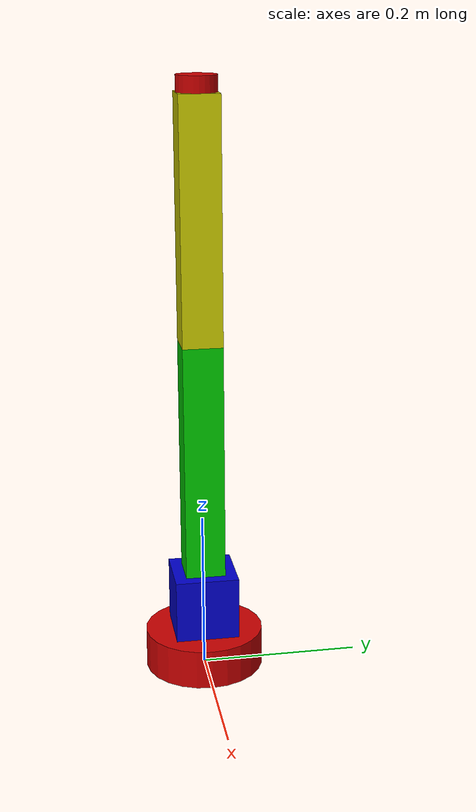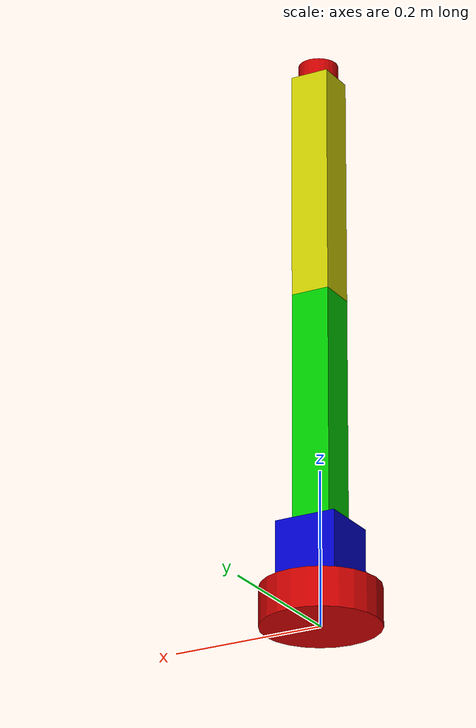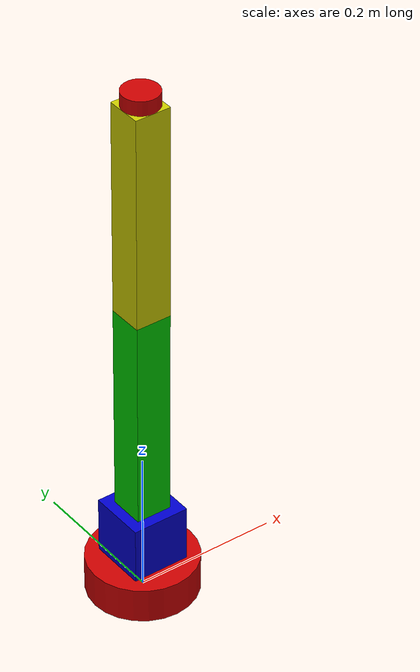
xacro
<?xml version="1.0"?>
<robot name="ik_manipulator" xmlns:xacro="http://ros.org/wiki/xacro">

	<xacro:include filename="$(find inverse_kinematic_manipulator)/urdf/properties/size_and_weight_properties.xacro"/>

  <xacro:macro name="cylinder_inertia" params="m r h">
    <inertia  ixx="${m*(3*r*r+h*h)/12}" ixy = "0" ixz = "0"
              iyy="${m*(3*r*r+h*h)/12}" iyz = "0"
              izz="${m*r*r/2}"/>
  </xacro:macro>

	<!-- base link -->
	<link name="base_link">
		<visual>
			<origin xyz="0.0 0.0 ${base_link_height/2}" rpy="0.0 0.0 0.0"/>
			<geometry>
				<cylinder length="${base_link_height}" radius="${base_link_radius}"/>
			</geometry>
			<material name="red">
				<color rgba="0.8 0.0 0.0 1.0"/>
			</material>
		</visual>
		<collision>
			<origin xyz="0.0 0.0 0.025" rpy="0.0 0.0 0.0"/>
			<geometry>
				<cylinder length="${base_link_height}" radius="${base_link_radius}"/>
			</geometry>
		</collision>
		<inertial>
			<origin xyz="0.0 0.0 ${shoulder_z_height/2}" rpy="0.0 0.0 0.0"/>
			<mass value="${base_link_mass}" />
			<xacro:cylinder_inertia  m="${base_link_mass}" r="${base_link_radius}" h="${base_link_height}"/>
		</inertial>
	</link>

	<gazebo reference="base_link">
		<selfCollide>false</selfCollide>
		<material value="Gazebo/Red"/>
    <turnGravityOff>false</turnGravityOff>
  </gazebo>

	<!-- shoulder z link -->
	<joint name="shoulder_z_joint" type="revolute">
		<origin xyz="0.0 0.0 ${base_link_height}" rpy="0.0 0.0 0.0"/>
		<parent link="base_link"/>
		<child link="shoulder_z_link"/>
		<axis xyz="0.0 0.0 1.0"/>
		<limit lower="-1e+16" upper="1e+16" effort="20.0" velocity="5.0"/>
    <dynamics damping="0.4" friction="0.2"/>
	</joint>

	<link name="shoulder_z_link">
		<visual>
			<origin xyz="0.0 0.0 ${shoulder_z_height/2}" rpy="0.0 0.0 0.0"/>
			<geometry>
				<box size="${shoulder_z_length} ${shoulder_z_width} ${shoulder_z_height}"/>
			</geometry>
			<material name="blue">
				<color rgba="0.0 0.0 0.8 1.0"/>
			</material>
		</visual>
		<collision>
			<origin xyz="0.0 0.0 ${shoulder_z_height/2}" rpy="0.0 0.0 0.0"/>
			<geometry>
				<box size="${shoulder_z_length} ${shoulder_z_width} ${shoulder_z_height}"/>
			</geometry>
		</collision>
		<inertial>
			<origin xyz="0.0 0.0 ${shoulder_z_height/2}" rpy="0.0 0.0 0.0"/>
			<mass value="${shoulder_z_mass}" />
			<xacro:cylinder_inertia m="${shoulder_z_mass}" r="${shoulder_z_length/2}" h="${shoulder_z_height}"/>
		</inertial>
	</link>

	<gazebo reference="shoulder_z_link">
		<selfCollide>false</selfCollide>
		<material value="Gazebo/Blue"/>
    <turnGravityOff>false</turnGravityOff>
  </gazebo>

	<!-- arm a link -->
	<joint name="arm_a_joint" type="revolute">
		<origin xyz="0.0 0.0 ${shoulder_z_height}" rpy="0.0 0.0 0.0"/>
		<parent link="shoulder_z_link"/>
		<child link="arm_a_link"/>
		<axis xyz="0.0 1.0 0.0"/>
		<limit lower="-1e+16" upper="1e+16" effort="20.0" velocity="5.0"/>
    <dynamics damping="2" friction="0.2"/>
	</joint>

	<link name="arm_a_link">
		<inertial>
			<origin xyz="0.0 0.0 0.0" rpy="0.0 0.0 0.0"/>
			<mass value="${arm_a_mass}"/>
			<xacro:cylinder_inertia m="${arm_a_mass}" r="${arm_a_length/2}" h="${arm_a_height}"/>
		</inertial>
		<visual>
			<origin xyz="0.0 0.0 ${arm_a_height/2}" rpy="0.0 0.0 0.0"/>
			<geometry>
				<box size="${arm_a_length} ${arm_a_width} ${arm_a_height}"/>
			</geometry>
			<material name="green">
				<color rgba="0.0 0.8 0.0 1.0"/>
			</material>
		</visual>
		<collision>
			<origin xyz="0.0 0.0 ${arm_a_height/2}" rpy="0.0 0.0 0.0"/>
			<geometry>
				<box size="${arm_a_length} ${arm_a_width} ${arm_a_height}"/>
			</geometry>
		</collision>
	</link>

	<gazebo reference="arm_a_link">
		<selfCollide>false</selfCollide>
		<material value="Gazebo/Green"/>
    <turnGravityOff>false</turnGravityOff>
  </gazebo>

	<!-- arm b link -->
	<joint name="arm_b_initial_joint" type="revolute">
		<origin xyz="0.0 0.0 ${arm_a_height}" rpy="0.0 0.0 0.0"/>
		<parent link="arm_a_link"/>
		<child link="arm_b_initial_link"/>
		<axis xyz="0.0 1.0 0.0"/>
		<limit lower="-1e+16" upper="1e+16" effort="20.0" velocity="5.0"/>
    <dynamics damping="2" friction="0.2"/>
	</joint>

	<link name="arm_b_initial_link">
		<inertial>
			<origin xyz="0.0 0.0 0.0" rpy="0.0 0.0 0.0"/>
			<mass value="0.1"/>
			<inertia ixx="0.00001" ixy="0.0" ixz="0.0" iyy="0.00001" iyz="0.0" izz="0.00001"/>
		</inertial>
	</link>

	<joint name="arm_b_joint" type="revolute">
		<origin xyz="0.0 0.0 0.0" rpy="0.0 0.0 0.0"/>
		<parent link="arm_b_initial_link"/>
		<child link="arm_b_link"/>
		<axis xyz="0.0 0.0 1.0"/>
		<limit lower="-1e+16" upper="1e+16" effort="20.0" velocity="5.0"/>
    <dynamics damping="2" friction="0.2"/>
	</joint>

	<link name="arm_b_link">
		<inertial>
			<origin xyz="0.0 0.0 0.0" rpy="0.0 0.0 0.0"/>
			<mass value="${arm_b_mass}"/>
			<xacro:cylinder_inertia m="${arm_b_mass}" r="${arm_b_length/2}" h="${arm_b_height}"/>
		</inertial>
		<visual>
			<origin xyz="0.0 0.0 ${arm_b_height/2}" rpy="0.0 0.0 0.0"/>
			<geometry>
				<box size="${arm_b_length} ${arm_b_width} ${arm_b_height}"/>
			</geometry>
			<material name="yellow">
				<color rgba="0.8 0.8 0.0 1.0"/>
			</material>
		</visual>
		<collision>
			<origin xyz="0.0 0.0 ${arm_b_height/2}" rpy="0.0 0.0 0.0"/>
			<geometry>
				<box size="${arm_b_length} ${arm_b_width} ${arm_b_height}"/>
			</geometry>
		</collision>
	</link>

	<gazebo reference="arm_b_link">
		<selfCollide>false</selfCollide>
		<material value="Gazebo/Yellow"/>
    <turnGravityOff>false</turnGravityOff>
  </gazebo>

	<!-- wrist a link -->
	<joint name="wrist_a_joint" type="revolute">
		<origin xyz="0.0 0.0 ${arm_b_height}" rpy="0.0 0.0 0.0"/>
		<parent link="arm_b_link"/>
		<child link="wrist_a_link"/>
		<axis xyz="0.0 1.0 0.0"/>
		<limit lower="-1e+16" upper="1e+16" effort="20.0" velocity="5.0"/>
    <dynamics damping="2" friction="0.2"/>
	</joint>

	<link name="wrist_a_link">
		<inertial>
			<origin xyz="0.0 0.0 0.0" rpy="0.0 0.0 0.0"/>
			<mass value="${wrist_a_mass}"/>
			<xacro:cylinder_inertia m="${wrist_a_mass}" r="${wrist_a_radius}" h="${wrist_a_height}"/>
		</inertial>
		<visual>
			<origin xyz="0.0 0.0 ${wrist_a_height/2}" rpy="0.0 0.0 0.0"/>
			<geometry>
				<cylinder radius="${wrist_a_radius}" length="${wrist_a_height}"/>
			</geometry>
			<material name="red">
			</material>
		</visual>
		<collision>
			<origin xyz="0.0 0.0 ${wrist_a_height/2}" rpy="0.0 0.0 0.0"/>
			<geometry>
				<cylinder radius="${wrist_a_radius}" length="${wrist_a_height}"/>
			</geometry>
		</collision>
	</link>

	<gazebo reference="wrist_a_link">
		<selfCollide>false</selfCollide>
		<material value="Gazebo/Red"/>
    <turnGravityOff>false</turnGravityOff>
  </gazebo>

</robot>

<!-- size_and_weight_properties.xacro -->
<robot name="size_and_weight_properties" xmlns:xacro="http://ros.org/wiki/xacro">

	<!-- base_link -->
	<xacro:property name="base_link_radius" value="0.075"/>
	<xacro:property name="base_link_height" value="0.05"/>
	<xacro:property name="base_link_mass" value="5"/>

	<!-- shoulder_z_link -->
	<xacro:property name="shoulder_z_length" value="0.08"/>
	<xacro:property name="shoulder_z_width" value="0.08"/>
	<xacro:property name="shoulder_z_height" value="0.08"/>
	<xacro:property name="shoulder_z_mass" value="1"/>

	<xacro:property name="arm_a_length" value="0.05"/>
	<xacro:property name="arm_a_width" value="0.05"/>
	<xacro:property name="arm_a_height" value="0.3"/>
	<xacro:property name="arm_a_mass" value="0.5"/>

	<xacro:property name="arm_b_length" value="0.05"/>
	<xacro:property name="arm_b_width" value="0.05"/>
	<xacro:property name="arm_b_height" value="0.3"/>
	<xacro:property name="arm_b_mass" value="0.5"/>

	<xacro:property name="wrist_a_radius" value="0.025"/>
	<xacro:property name="wrist_a_height" value="0.02"/>
	<xacro:property name="wrist_a_mass" value="0.2"/>

</robot>
